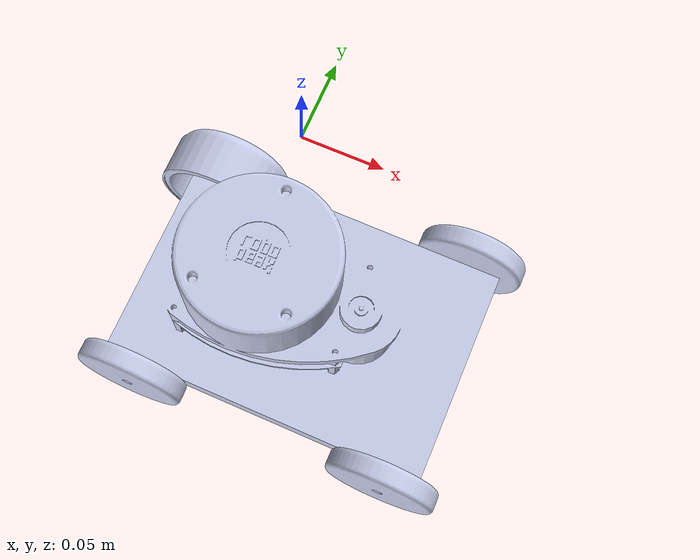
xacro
<?xml version="1.0" encoding="utf-8"?>

<robot name="prototype_assem1" xmlns:xacro="http://www.ros.org/wiki/xacro">

<xacro:include filename="$(find prototype_assem1)/urdf/materials.xacro" />

<xacro:include filename="$(find prototype_assem1)/gazebo/robot_sim_detailed_plugins.gazebo" />

  <link
    name="base_link">
    <inertial>
      <origin
        xyz="0.040103 -0.11606 -0.11548"
        rpy="0 0 0" />
      <mass
        value="1.4768" />
      <inertia
        ixx="0.00073805"
        ixy="0.00015827"
        ixz="7.4015E-06"
        iyy="0.001487"
        iyz="7.0047E-08"
        izz="0.0012289" />
    </inertial>
    <visual>
      <origin
        xyz="0 0 0"
        rpy="0 0 0" />
      <geometry>
        <mesh
          filename="package://prototype_assem1/meshes/base_link.STL" />
      </geometry>
      <material
        name="">
        <color
          rgba="0.79216 0.81961 0.93333 1" />
      </material>
    </visual>
    <collision>
      <origin
        xyz="0 0 0"
        rpy="0 0 0" />
      <geometry>
        <mesh
          filename="package://prototype_assem1/meshes/base_link.STL" />
      </geometry>
    </collision>
  </link>
  <link
    name="left_front">
    <inertial>
      <origin
        xyz="0 -0.005 0"
        rpy="0 0 0" />
      <mass
        value="0.019174" />
      <inertia
        ixx="3.1442E-06"
        ixy="-4.0923E-23"
        ixz="-6.7692E-23"
        iyy="5.9755E-06"
        iyz="-2.0116E-23"
        izz="3.1442E-06" />
    </inertial>
    <visual>
      <origin
        xyz="0 0 0"
        rpy="0 0 0" />
      <geometry>
        <mesh
          filename="package://prototype_assem1/meshes/left_front.STL" />
      </geometry>
      <material
        name="">
        <color
          rgba="0.79216 0.81961 0.93333 1" />
      </material>
    </visual>
    <collision>
      <origin
        xyz="0 0 0"
        rpy="0 0 0" />
      <geometry>
        <mesh
          filename="package://prototype_assem1/meshes/left_front.STL" />
      </geometry>
    </collision>
  </link>
  <joint
    name="left_front_joint"
    type="continuous">
    <origin
      xyz="0.11247 -0.055978 0.079777"
      rpy="0 0 0" />
    <parent
      link="base_link" />
    <child
      link="left_front" />
    <axis
      xyz="0 1 0" />
  </joint>
  <link
    name="left_back">
    <inertial>
      <origin
        xyz="0 -0.005 0"
        rpy="0 0 0" />
      <mass
        value="0.019174" />
      <inertia
        ixx="3.1442E-06"
        ixy="-7.2839E-24"
        ixz="1.3294E-25"
        iyy="5.9755E-06"
        iyz="-2.0805E-23"
        izz="3.1442E-06" />
    </inertial>
    <visual>
      <origin
        xyz="0 0 0"
        rpy="0 0 0" />
      <geometry>
        <mesh
          filename="package://prototype_assem1/meshes/left_back.STL" />
      </geometry>
      <material
        name="">
        <color
          rgba="0.79216 0.81961 0.93333 1" />
      </material>
    </visual>
    <collision>
      <origin
        xyz="0 0 0"
        rpy="0 0 0" />
      <geometry>
        <mesh
          filename="package://prototype_assem1/meshes/left_back.STL" />
      </geometry>
    </collision>
  </link>
  <joint
    name="left_back_joint"
    type="continuous">
    <origin
      xyz="-0.0075297 -0.055978 0.079777"
      rpy="0 0 0" />
    <parent
      link="base_link" />
    <child
      link="left_back" />
    <axis
      xyz="0 1 0" />
  </joint>
  <link
    name="right_front">
    <inertial>
      <origin
        xyz="-4.1633E-17 0.005 1.3878E-17"
        rpy="0 0 0" />
      <mass
        value="0.019174" />
      <inertia
        ixx="3.1442E-06"
        ixy="-9.9033E-21"
        ixz="-3.673E-35"
        iyy="5.9755E-06"
        iyz="9.9041E-21"
        izz="3.1442E-06" />
    </inertial>
    <visual>
      <origin
        xyz="0 0 0"
        rpy="0 0 0" />
      <geometry>
        <mesh
          filename="package://prototype_assem1/meshes/right_front.STL" />
      </geometry>
      <material
        name="">
        <color
          rgba="0.79216 0.81961 0.93333 1" />
      </material>
    </visual>
    <collision>
      <origin
        xyz="0 0 0"
        rpy="0 0 0" />
      <geometry>
        <mesh
          filename="package://prototype_assem1/meshes/right_front.STL" />
      </geometry>
    </collision>
  </link>
  <joint
    name="right_front_joint"
    type="continuous">
    <origin
      xyz="0.11247 -0.17598 0.079777"
      rpy="0 0 0" />
    <parent
      link="base_link" />
    <child
      link="right_front" />
    <axis
      xyz="0 1 0" />
  </joint>
  <link
    name="right_back">
    <inertial>
      <origin
        xyz="-1.8215E-17 0.005 1.3878E-17"
        rpy="0 0 0" />
      <mass
        value="0.019174" />
      <inertia
        ixx="3.1442E-06"
        ixy="-9.8297E-21"
        ixz="-3.4582E-35"
        iyy="5.9755E-06"
        iyz="9.9033E-21"
        izz="3.1442E-06" />
    </inertial>
    <visual>
      <origin
        xyz="0 0 0"
        rpy="0 0 0" />
      <geometry>
        <mesh
          filename="package://prototype_assem1/meshes/right_back.STL" />
      </geometry>
      <material
        name="">
        <color
          rgba="0.79216 0.81961 0.93333 1" />
      </material>
    </visual>
    <collision>
      <origin
        xyz="0 0 0"
        rpy="0 0 0" />
      <geometry>
        <mesh
          filename="package://prototype_assem1/meshes/right_back.STL" />
      </geometry>
    </collision>
  </link>
  <joint
    name="right_back_joint"
    type="continuous">
    <origin
      xyz="-0.0075297 -0.17598 0.079777"
      rpy="0 0 0" />
    <parent
      link="base_link" />
    <child
      link="right_back" />
    <axis
      xyz="0 1 0" />
  </joint>
</robot>
